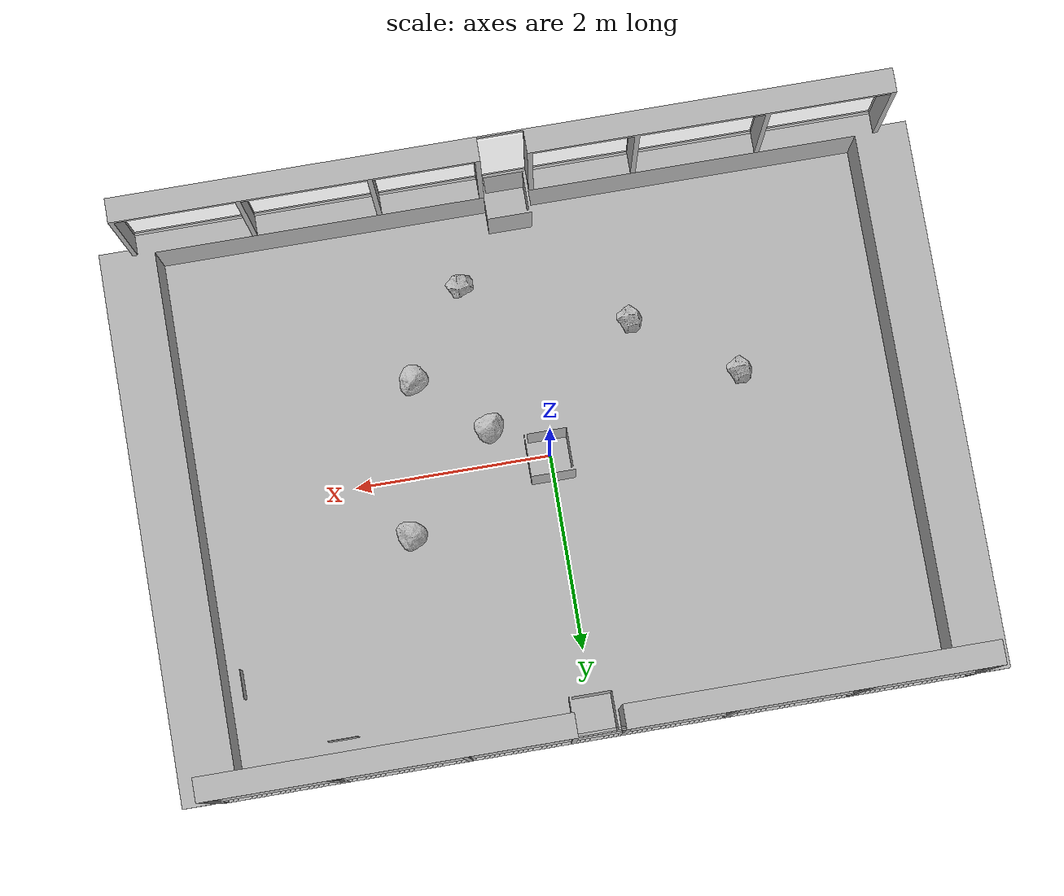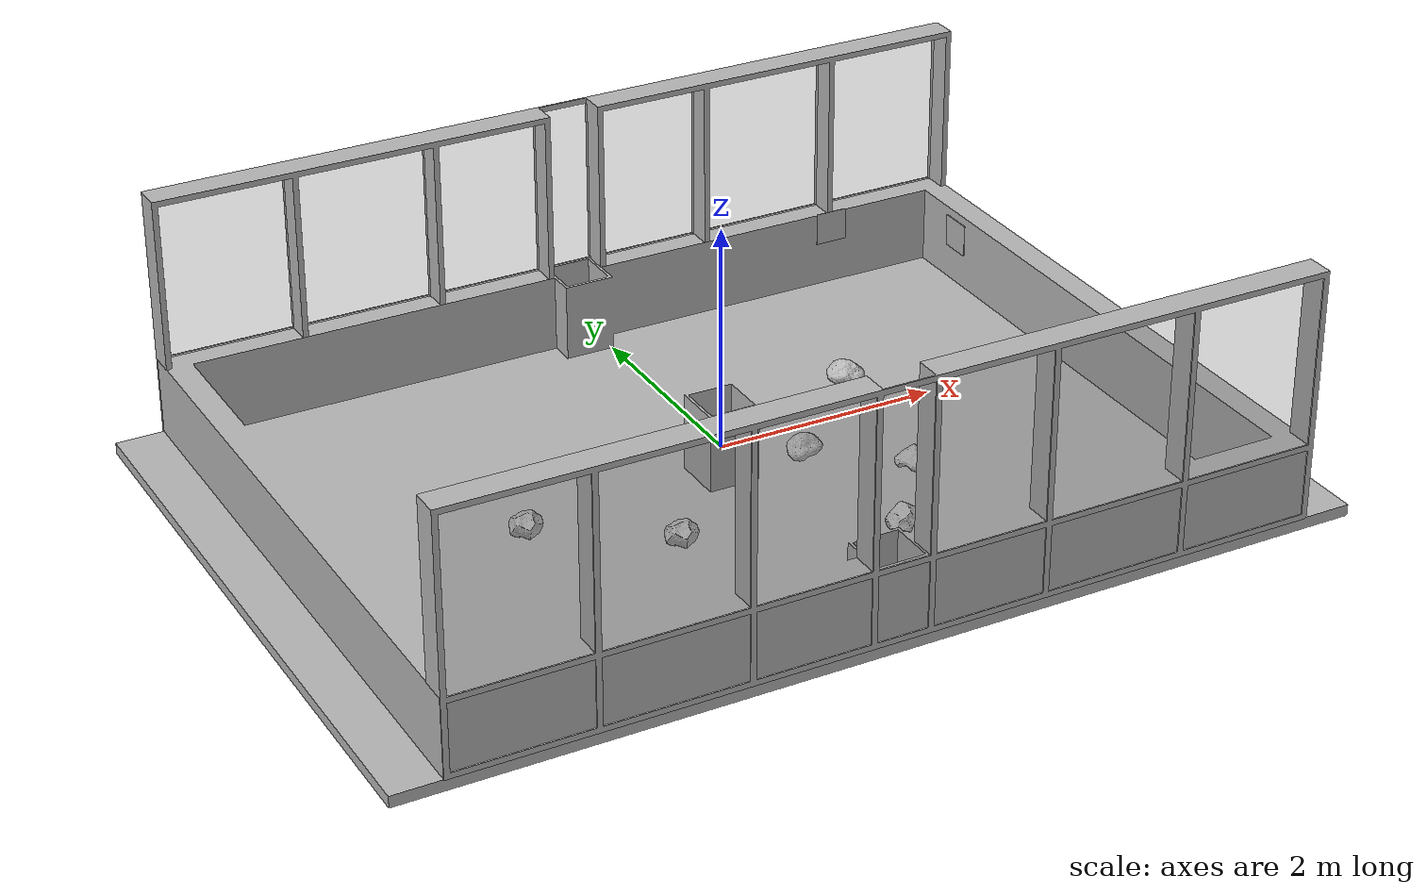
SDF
<sdf version="1.7">
 <world name="default">
  <plugin filename="gz-sim-physics-system" name="gz::sim::systems::Physics"/>
  <plugin filename="gz-sim-user-commands-system" name="gz::sim::systems::UserCommands"/>
  <plugin filename="gz-sim-scene-broadcaster-system" name="gz::sim::systems::SceneBroadcaster"/>
  <light name="sun" type="directional">
   <pose>0 0 10 0 0 0</pose>
   <diffuse>0.4 0.4 0.4 1</diffuse>
   <specular>0.1 0.1 0.1 1</specular>
   <attenuation>
    <range>500</range>
    <constant>0.8</constant>
    <linear>0.02</linear>
    <quadratic>0.001</quadratic>
   </attenuation>
   <direction>-0.5 0.1 -0.9</direction>
  </light>
  <scene>
   <ambient>0.4 0.4 0.4 1</ambient>
   <shadows>1</shadows>
   <grid>false</grid>
   <origin_visual>false</origin_visual>
  </scene>
  <physics type="ode">
   <max_step_size>0.001</max_step_size>
   <real_time_factor>1</real_time_factor>
   <real_time_update_rate>1000</real_time_update_rate>
  </physics>
  <gravity>0 0 -9.81</gravity>
  <model name="artemis_arena_walls">
   <pose>0 0 1.248 0 0 0</pose>
   <static>1</static>
   <link name="link">
    <visual name="artemis_arena_walls">
     <geometry>
      <mesh><uri>model://artemis_arena/arena_walls/arena_walls.dae</uri><scale>1 1 1</scale></mesh>
     </geometry>
    </visual>
    <collision name="artemis_arena_walls_collision">
     <geometry>
      <mesh><uri>model://artemis_arena/arena_walls/arena_walls.stl</uri><scale>1 1 1</scale></mesh>
     </geometry>
     <surface><friction><ode><mu>0.8</mu><mu2>0.8</mu2></ode></friction></surface>
    </collision>
   </link>
  </model>
  <model name="artemis_arena_window_frames">
   <pose>0 0 1.248 0 0 0</pose>
   <static>1</static>
   <link name="link">
    <visual name="artemis_arena_window_frames">
     <geometry>
      <mesh><uri>model://artemis_arena/arena_window_frames/arena_window_frames.dae</uri><scale>1 1 1</scale></mesh>
     </geometry>
    </visual>
    <collision name="artemis_arena_window_frames_collision">
     <geometry>
      <mesh><uri>model://artemis_arena/arena_window_frames/arena_window_frames.stl</uri><scale>1 1 1</scale></mesh>
     </geometry>
     <surface><friction><ode><mu>0.8</mu><mu2>0.8</mu2></ode></friction></surface>
    </collision>
   </link>
  </model>
  <model name="artemis_arena_windows">
   <pose>0 0 1.248 0 0 0</pose>
   <static>1</static>
   <link name="link">
    <visual name="artemis_arena_windows">
     <geometry>
      <mesh><uri>model://artemis_arena/arena_windows/arena_windows.dae</uri><scale>1 1 1</scale></mesh>
     </geometry>
     <material>
      <ambient>0.5 0.5 0.5 0.3</ambient>
      <diffuse>0.7 0.7 0.7 0.3</diffuse>
      <specular>0.2 0.2 0.2 0.3</specular>
      <emissive>0 0 0 0.0</emissive>
     </material>
    </visual>
    <collision name="artemis_arena_windows_collision">
     <geometry>
      <mesh><uri>model://artemis_arena/arena_windows/arena_windows.stl</uri><scale>1 1 1</scale></mesh>
     </geometry>
     <surface><friction><ode><mu>0.8</mu><mu2>0.8</mu2></ode></friction></surface>
    </collision>
   </link>
  </model>
  <model name="rock_round">
   <pose>1.52307 0.570163 0.05 0 0 0.846674</pose>
   <static>1</static>
   <link name="link">
    <visual name="rock_round">
     <geometry><mesh><uri>model://rock_round/rock_round.dae</uri><scale>1 1 1</scale></mesh></geometry>
    </visual>
    <collision name="rock_round_collision">
     <geometry><mesh><uri>model://rock_round/rock_round.stl</uri><scale>1 1 1</scale></mesh></geometry>
    </collision>
   </link>
  </model>
  <model name="rock_round_2">
   <pose>0.56 -0.39 0.05 0 0 -0.80</pose>
   <static>1</static>
   <link name="link">
    <visual name="rock_round_2">
     <geometry><mesh><uri>model://rock_round/rock_round.dae</uri><scale>1 1 1</scale></mesh></geometry>
    </visual>
    <collision name="rock_round_2_collision">
     <geometry><mesh><uri>model://rock_round/rock_round.stl</uri><scale>1 1 1</scale></mesh></geometry>
    </collision>
   </link>
  </model>
  <model name="rock_round_3">
   <pose>1.25 -1.0 0.05 0 0 2.55</pose>
   <static>1</static>
   <link name="link">
    <visual name="rock_round_3">
     <geometry><mesh><uri>model://rock_round/rock_round.dae</uri><scale>1 1 1</scale></mesh></geometry>
    </visual>
    <collision name="rock_round_3_collision">
     <geometry><mesh><uri>model://rock_round/rock_round.stl</uri><scale>1 1 1</scale></mesh></geometry>
    </collision>
    <velocity_decay><linear>0.3</linear><angular>0.3</angular></velocity_decay>
   </link>
  </model>
  <model name="rock_rough">
   <pose>-2.01943 -0.546468 0.05 0 0 -2.17367</pose>
   <self_collide>1</self_collide>
   <static>0</static>
   <link name="link">
    <inertial><mass>5.0</mass><inertia><ixx>3.0</ixx><iyy>3.0</iyy><izz>3.0</izz></inertia></inertial>
    <visual name="rock_rough">
     <geometry><mesh><uri>model://rock_rough/rock_rough.dae</uri><scale>1 1 1</scale></mesh></geometry>
    </visual>
    <collision name="rock_rough_collision">
     <geometry><mesh><uri>model://rock_rough/rock_rough.stl</uri><scale>1 1 1</scale></mesh></geometry>
     <surface><friction><ode><mu>1.5</mu><mu2>1.5</mu2></ode></friction></surface>
    </collision>
    <velocity_decay><linear>0.3</linear><angular>0.3</angular></velocity_decay>
   </link>
  </model>
  <model name="rock_rough_2">
   <pose>0.63 -1.84 0.05 0 0 -0.62</pose>
   <self_collide>1</self_collide>
   <static>1</static>
   <link name="link">
    <visual name="rock_rough_2">
     <geometry><mesh><uri>model://rock_rough/rock_rough.dae</uri><scale>1 1 1</scale></mesh></geometry>
    </visual>
    <collision name="rock_rough_2_collision">
     <geometry><mesh><uri>model://rock_rough/rock_rough.stl</uri><scale>1 1 1</scale></mesh></geometry>
    </collision>
   </link>
  </model>
  <model name="rock_rough_3">
   <pose>-1.0 -1.25 0.05 0 0 -2.17367</pose>
   <self_collide>1</self_collide>
   <static>0</static>
   <link name="link">
    <inertial><mass>5.0</mass><inertia><ixx>3.0</ixx><iyy>3.0</iyy><izz>3.0</izz></inertia></inertial>
    <visual name="rock_rough_3">
     <geometry><mesh><uri>model://rock_rough/rock_rough.dae</uri><scale>1 1 1</scale></mesh></geometry>
    </visual>
    <collision name="rock_rough_3_collision">
     <geometry><mesh><uri>model://rock_rough/rock_rough.stl</uri><scale>1 1 1</scale></mesh></geometry>
     <surface><friction><ode><mu>1.5</mu><mu2>1.5</mu2></ode></friction></surface>
    </collision>
    <velocity_decay><linear>0.3</linear><angular>0.3</angular></velocity_decay>
   </link>
  </model>
  <model name="tag_36_11_00007">
   <pose>3.4 1.8 0.4 0 -1.58 0</pose>
   <static>1</static>
   <link name="link">
    <visual name="tag_36_11_00007">
     <geometry><box><size>0.3 0.3 0.005</size></box></geometry>
     <material>
      <script>
       <uri>model://apriltags/tag_36_11_00007/materials/scripts</uri>
       <uri>model://apriltags/tag_36_11_00007/materials/textures</uri>
       <name>tag_36_11_00007</name>
      </script>
     </material>
    </visual>
    <collision name="tag_36_11_00007_collision">
     <geometry><box><size>0.3 0.3 0.005</size></box></geometry>
    </collision>
   </link>
  </model>
  <model name="tag_36_11_00011">
   <pose>2.5 2.5 0.4 1.58 0 0</pose>
   <static>1</static>
   <link name="link">
    <visual name="tag_36_11_00011">
     <geometry><box><size>0.3 0.3 0.005</size></box></geometry>
     <material>
      <script>
       <uri>model://apriltags/tag_36_11_00011/materials/scripts</uri>
       <uri>model://apriltags/tag_36_11_00011/materials/textures</uri>
       <name>tag_36_11_00011</name>
      </script>
     </material>
    </visual>
    <collision name="tag_36_11_00011_collision">
     <geometry><box><size>0.3 0.3 0.005</size></box></geometry>
    </collision>
   </link>
  </model>
 </world>
</sdf>
